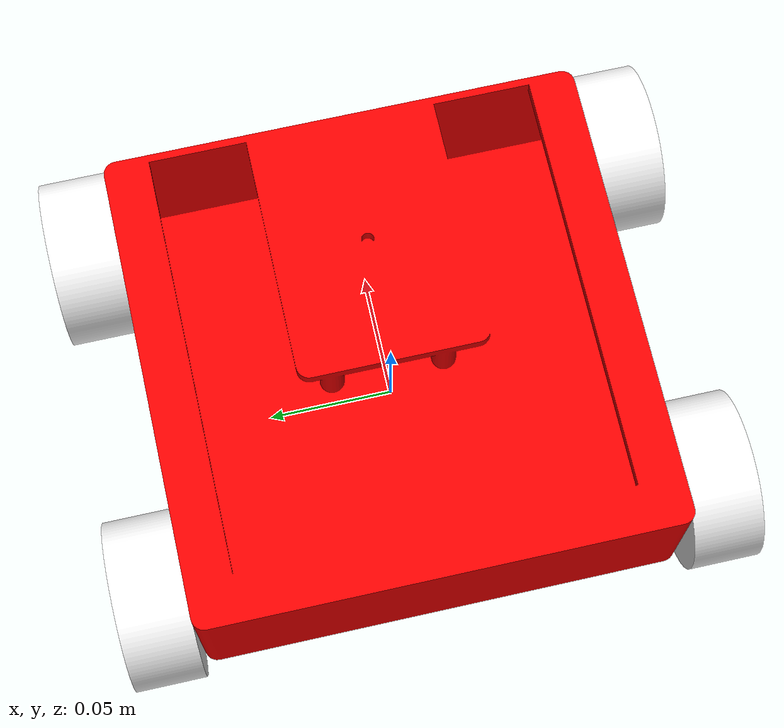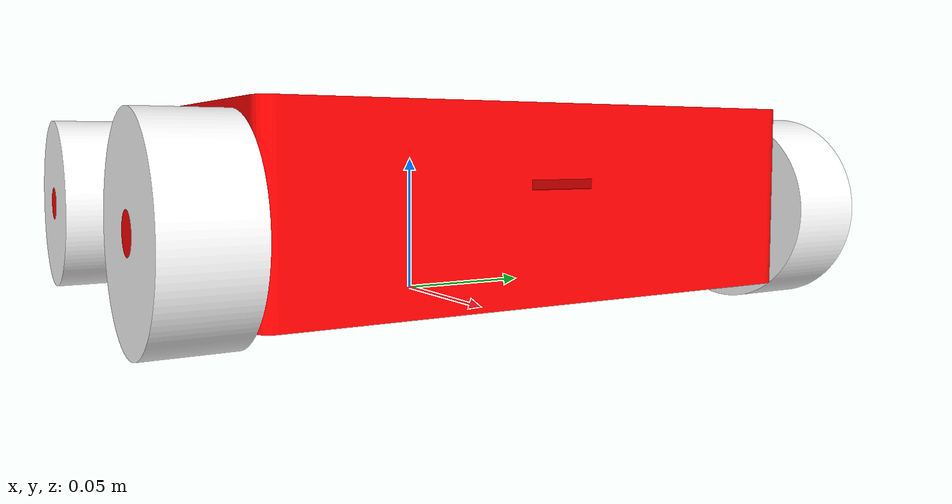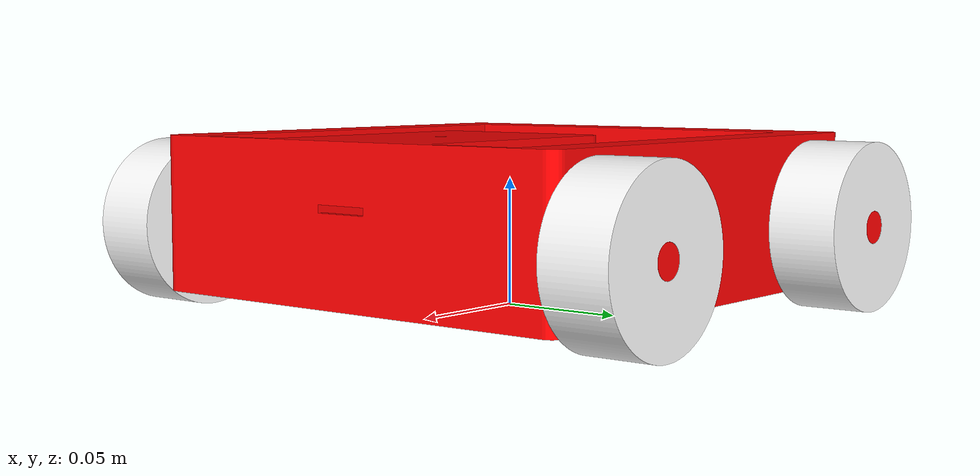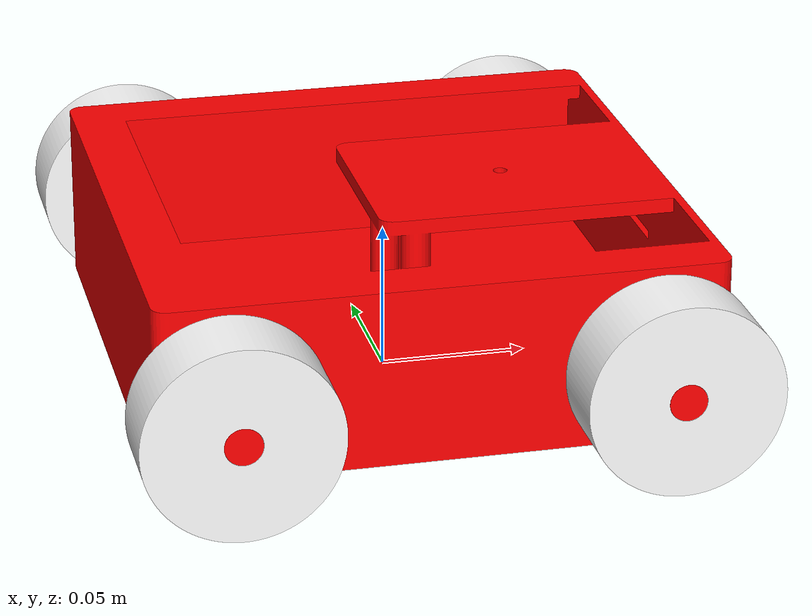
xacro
<?xml version="1.0" ?>
<robot name="ros" xmlns:xacro="http://www.ros.org/wiki/xacro">

<material name="red">
  <color rgba="1.0 0.0 0.0 1.0"/>
</material>

<material name="yellow">
  <color rgba="1.0 1.0 0.0 1.0"/>
</material>

<material name="black">
  <color rgba="0.0 0.0 0.0 1.0"/>
</material>

<material name="white">
  <color rgba="1.0 1.0 1.0 1.0"/>
</material>

<!-- base link -->
<link name="base_link">
</link>

<!-- footprint -->
<joint name="base_footprint_joint" type="fixed">
  <parent link="base_link"/>
  <child link="base_footprint"/>
  <origin xyz="0 0 0" rpy="0 0 0"/>
</joint>

<link name="base_footprint">
</link>

<!-- chassis -->
<link name="chassis">
  <inertial>
    <origin xyz="0.0015483445551351684 9.221976530763488e-17 0.03108493176090641" rpy="0 0 0"/>
    <mass value="3.096747594228112"/>
    <inertia ixx="0.014155" iyy="0.013569" izz="0.024448" ixy="0.0" iyz="0.0" ixz="-0.000156"/>
  </inertial>
  <visual>
    <origin xyz="0 0 0" rpy="0 0 0"/>
    <geometry>
      <mesh filename="file://$(find bot)/meshes/chassis.stl" scale="0.001 0.001 0.001"/>
    </geometry>
    <material name="red"/>
  </visual>
  <collision>
    <origin xyz="0 0 0" rpy="0 0 0"/>
    <geometry>
      <mesh filename="file://$(find bot)/meshes/chassis.stl" scale="0.001 0.001 0.001"/>
    </geometry>
  </collision>
</link>

<joint name="chassis_joint" type="fixed">
  <origin xyz="-0.0 0.0 0.0" rpy="0 0 0"/>
  <parent link="base_link"/>
  <child link="chassis"/>
</joint>

<gazebo reference="chassis">
  <material>Gazebo/Red</material>
  <mu1>0.2</mu1>
  <mu2>0.2</mu2>
</gazebo>

<!-- left rare wheel -->
<link name="LR_wheel">
  <inertial>
    <origin xyz="5.0182080713057076e-14 -0.013499999999999998 0.0" rpy="0 0 0"/>
    <mass value="0.6773050413536889"/>
    <inertia ixx="0.000227" iyy="0.000371" izz="0.000227" ixy="-0.0" iyz="0.0" ixz="-0.0"/>
  </inertial>
  <visual>
    <origin xyz="0.071 -0.121 -0.0325" rpy="0 0 0"/>
    <geometry>
      <mesh filename="file://$(find bot)/meshes/LR_wheel.stl" scale="0.001 0.001 0.001"/>
    </geometry>
    <material name="white"/>
  </visual>
  <collision>
    <origin xyz="0.071 -0.121 -0.0325" rpy="0 0 0"/>
    <geometry>
      <mesh filename="file://$(find bot)/meshes/LR_wheel.stl" scale="0.001 0.001 0.001"/>
    </geometry>
  </collision>
</link>

<joint name="LR_joint" type="continuous">
  <origin xyz="-0.071 0.121 0.0325" rpy="0 0 0"/>
  <parent link="chassis"/>
  <child link="LR_wheel"/>
  <axis xyz="0.0 1.0 0.0"/>
</joint>

<gazebo reference="LR_wheel">
  <material>Gazebo/White</material>
</gazebo>

<!-- left front wheel -->
<link name="LF_wheel">
  <inertial>
    <origin xyz="5.0182080713057076e-14 -0.013499999999999998 0.0" rpy="0 0 0"/>
    <mass value="0.6773050413536889"/>
    <inertia ixx="0.000227" iyy="0.000371" izz="0.000227" ixy="0.0" iyz="0.0" ixz="0.0"/>
  </inertial>
  <visual>
    <origin xyz="-0.071 -0.121 -0.0325" rpy="0 0 0"/>
    <geometry>
      <mesh filename="file://$(find bot)/meshes/LF_wheel.stl" scale="0.001 0.001 0.001"/>
    </geometry>
    <material name="white"/>
  </visual>
  <collision>
    <origin xyz="-0.071 -0.121 -0.0325" rpy="0 0 0"/>
    <geometry>
      <mesh filename="file://$(find bot)/meshes/LF_wheel.stl" scale="0.001 0.001 0.001"/>
    </geometry>
  </collision>
</link>

<joint name="LF_joint" type="fixed">
  <origin xyz="0.071 0.121 0.0325" rpy="0 0 0"/>
  <parent link="chassis"/>
  <child link="LF_wheel"/>
</joint>

<gazebo reference="LF_wheel">
  <material>Gazebo/White</material>
  <mu1>0.2</mu1>
  <mu2>0.2</mu2>
</gazebo>

<!-- right front wheel -->
<link name="RF_wheel">
  <inertial>
    <origin xyz="-2.5104918144336352e-14 0.013499999999999998 0.0" rpy="0 0 0"/>
    <mass value="0.6773050413536865"/>
    <inertia ixx="0.000227" iyy="0.000371" izz="0.000227" ixy="-0.0" iyz="0.0" ixz="0.0"/>
  </inertial>
  <visual>
    <origin xyz="-0.071 0.121 -0.0325" rpy="0 0 0"/>
    <geometry>
      <mesh filename="file://$(find bot)/meshes/RF_wheel.stl" scale="0.001 0.001 0.001"/>
    </geometry>
    <material name="white"/>
  </visual>
  <collision>
    <origin xyz="-0.071 0.121 -0.0325" rpy="0 0 0"/>
    <geometry>
      <mesh filename="file://$(find bot)/meshes/RF_wheel.stl" scale="0.001 0.001 0.001"/>
    </geometry>
  </collision>
</link>

<joint name="RF_joint" type="fixed">
  <origin xyz="0.071 -0.121 0.0325" rpy="0 0 0"/>
  <parent link="chassis"/>
  <child link="RF_wheel"/>
</joint>

<gazebo reference="RF_wheel">
  <material>Gazebo/White</material>
  <mu1>0.2</mu1>
  <mu2>0.2</mu2>
</gazebo>

<!-- right rare wheel -->
<link name="RR_wheel">
  <inertial>
    <origin xyz="-2.5091040356528538e-14 0.013499999999999998 0.0" rpy="0 0 0"/>
    <mass value="0.6773050413536865"/>
    <inertia ixx="0.000227" iyy="0.000371" izz="0.000227" ixy="-0.0" iyz="0.0" ixz="0.0"/>
  </inertial>
  <visual>
    <origin xyz="0.071 0.121 -0.0325" rpy="0 0 0"/>
    <geometry>
      <mesh filename="file://$(find bot)/meshes/RR_wheel.stl" scale="0.001 0.001 0.001"/>
    </geometry>
    <material name="white"/>
  </visual>
  <collision>
    <origin xyz="0.071 0.121 -0.0325" rpy="0 0 0"/>
    <geometry>
      <mesh filename="file://$(find bot)/meshes/RR_wheel.stl" scale="0.001 0.001 0.001"/>
    </geometry>
  </collision>
</link>

<joint name="RR_joint" type="continuous">
  <origin xyz="-0.071 -0.121 0.0325" rpy="0 0 0"/>
  <parent link="chassis"/>
  <child link="RR_wheel"/>
  <axis xyz="0.0 1.0 0.0"/>
</joint>

<gazebo reference="RR_wheel">
  <material>Gazebo/White</material>
</gazebo>

</robot>
